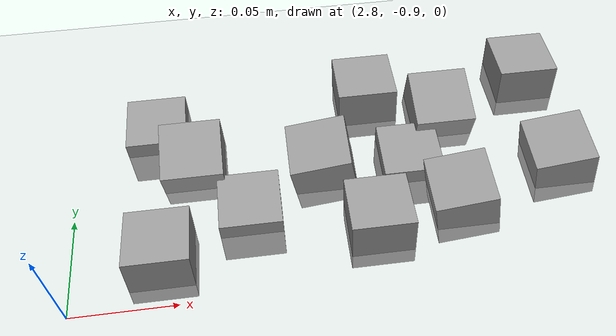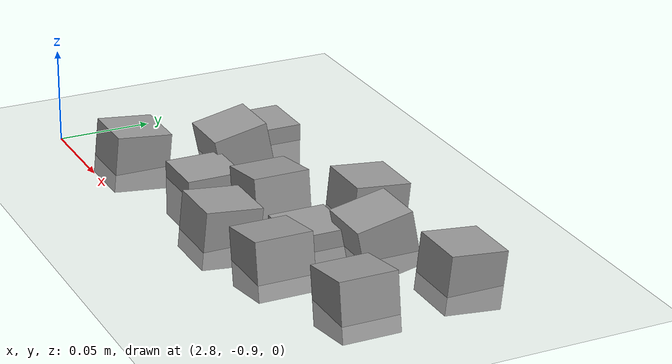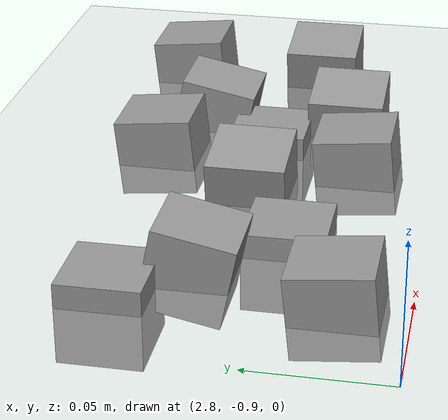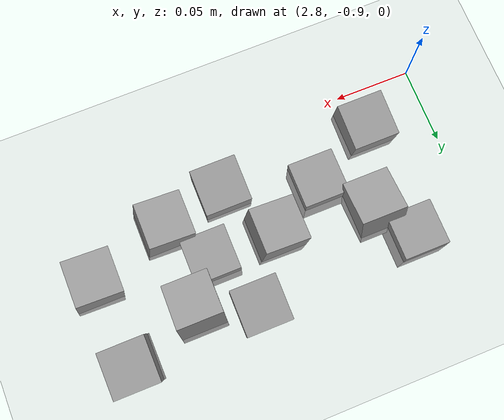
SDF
<sdf version="1.7">
 <world name="default">
  <model name="ground_plane">
   <static>1</static>
   <link name="link">
    <collision name="collision">
     <geometry><plane><normal>0 0 1</normal><size>100 100</size></plane></geometry>
     <surface><friction><ode><mu>100</mu><mu2>50</mu2></ode></friction></surface>
    </collision>
    <visual name="visual">
     <cast_shadows>0</cast_shadows>
     <geometry><plane><normal>0 0 1</normal><size>100 100</size></plane></geometry>
     <material>
      <script><uri>file://media/materials/scripts/gazebo.material</uri><name>Gazebo/Grey</name></script>
     </material>
    </visual>
   </link>
  </model>
  <model name="stone_road_12">
   <link name="link_0_clone_11">
    <inertial>
     <mass>1</mass>
     <inertia>
      <ixx>0.166667</ixx>
      <ixy>0</ixy>
      <ixz>0</ixz>
      <iyy>0.166667</iyy>
      <iyz>0</iyz>
      <izz>0.166667</izz>
     </inertia>
    </inertial>
    <pose>0.007758 0.071496 0.003778 0.2 -0 0</pose>
    <kinematic>1</kinematic>
    <visual name="visual">
     <geometry><box><size>0.03 0.03 0.03</size></box></geometry>
     <material>
      <lighting>1</lighting>
      <script><uri>file://media/materials/scripts/gazebo.material</uri><name>Gazebo/Grey</name></script>
      <shader type="pixel"><normal_map>__default__</normal_map></shader>
      <ambient>0.3 0.3 0.3 1</ambient>
      <diffuse>0.7 0.7 0.7 1</diffuse>
      <specular>0.01 0.01 0.01 1</specular>
      <emissive>0 0 0 1</emissive>
     </material>
    </visual>
    <collision name="collision">
     <geometry><box><size>0.03 0.03 0.03</size></box></geometry>
     <surface>
      <friction>
       <ode><mu>1</mu><mu2>1</mu2><fdir1>0 0 0</fdir1><slip1>0</slip1><slip2>0</slip2></ode>
       <torsional>
        <coefficient>1</coefficient>
        <patch_radius>0</patch_radius>
        <surface_radius>0</surface_radius>
        <use_patch_radius>1</use_patch_radius>
        <ode><slip>0</slip></ode>
       </torsional>
      </friction>
      <bounce><restitution_coefficient>0</restitution_coefficient><threshold>1e+06</threshold></bounce>
      <contact>
       <collide_without_contact>0</collide_without_contact>
       <collide_without_contact_bitmask>1</collide_without_contact_bitmask>
       <collide_bitmask>1</collide_bitmask>
       <ode>
        <soft_cfm>0</soft_cfm>
        <soft_erp>0.2</soft_erp>
        <kp>1e+13</kp>
        <kd>1</kd>
        <max_vel>0.01</max_vel>
        <min_depth>0</min_depth>
       </ode>
       <bullet>
        <split_impulse>1</split_impulse>
        <split_impulse_penetration_threshold>-0.01</split_impulse_penetration_threshold>
        <soft_cfm>0</soft_cfm>
        <soft_erp>0.2</soft_erp>
        <kp>1e+13</kp>
        <kd>1</kd>
       </bullet>
      </contact>
     </surface>
    </collision>
   </link>
   <link name="link_0_clone_2_clone_2_clone">
    <inertial>
     <mass>1</mass>
     <inertia>
      <ixx>0.166667</ixx>
      <ixy>0</ixy>
      <ixz>0</ixz>
      <iyy>0.166667</iyy>
      <iyz>0</iyz>
      <izz>0.166667</izz>
     </inertia>
    </inertial>
    <pose>0.189059 0.051135 0.003778 0 -0.15 0</pose>
    <kinematic>1</kinematic>
    <visual name="visual">
     <geometry><box><size>0.03 0.03 0.03</size></box></geometry>
     <material>
      <lighting>1</lighting>
      <script><uri>file://media/materials/scripts/gazebo.material</uri><name>Gazebo/Grey</name></script>
      <shader type="pixel"><normal_map>__default__</normal_map></shader>
      <ambient>0.3 0.3 0.3 1</ambient>
      <diffuse>0.7 0.7 0.7 1</diffuse>
      <specular>0.01 0.01 0.01 1</specular>
      <emissive>0 0 0 1</emissive>
     </material>
    </visual>
    <collision name="collision">
     <geometry><box><size>0.03 0.03 0.03</size></box></geometry>
     <surface>
      <friction>
       <ode><mu>1</mu><mu2>1</mu2><fdir1>0 0 0</fdir1><slip1>0</slip1><slip2>0</slip2></ode>
       <torsional>
        <coefficient>1</coefficient>
        <patch_radius>0</patch_radius>
        <surface_radius>0</surface_radius>
        <use_patch_radius>1</use_patch_radius>
        <ode><slip>0</slip></ode>
       </torsional>
      </friction>
      <bounce><restitution_coefficient>0</restitution_coefficient><threshold>1e+06</threshold></bounce>
      <contact>
       <collide_without_contact>0</collide_without_contact>
       <collide_without_contact_bitmask>1</collide_without_contact_bitmask>
       <collide_bitmask>1</collide_bitmask>
       <ode>
        <soft_cfm>0</soft_cfm>
        <soft_erp>0.2</soft_erp>
        <kp>1e+13</kp>
        <kd>1</kd>
        <max_vel>0.01</max_vel>
        <min_depth>0</min_depth>
       </ode>
       <bullet>
        <split_impulse>1</split_impulse>
        <split_impulse_penetration_threshold>-0.01</split_impulse_penetration_threshold>
        <soft_cfm>0</soft_cfm>
        <soft_erp>0.2</soft_erp>
        <kp>1e+13</kp>
        <kd>1</kd>
       </bullet>
      </contact>
     </surface>
    </collision>
   </link>
   <link name="link_0_clone_2_clone_2_clone_13_clone_clone">
    <inertial>
     <mass>1</mass>
     <inertia>
      <ixx>0.166667</ixx>
      <ixy>0</ixy>
      <ixz>0</ixz>
      <iyy>0.166667</iyy>
      <iyz>0</iyz>
      <izz>0.166667</izz>
     </inertia>
    </inertial>
    <pose>0.184456 0.108712 0.003778 -0.1 0 0</pose>
    <kinematic>1</kinematic>
    <visual name="visual">
     <geometry><box><size>0.03 0.03 0.03</size></box></geometry>
     <material>
      <lighting>1</lighting>
      <script><uri>file://media/materials/scripts/gazebo.material</uri><name>Gazebo/Grey</name></script>
      <shader type="pixel"><normal_map>__default__</normal_map></shader>
      <ambient>0.3 0.3 0.3 1</ambient>
      <diffuse>0.7 0.7 0.7 1</diffuse>
      <specular>0.01 0.01 0.01 1</specular>
      <emissive>0 0 0 1</emissive>
     </material>
    </visual>
    <collision name="collision">
     <geometry><box><size>0.03 0.03 0.03</size></box></geometry>
     <surface>
      <friction>
       <ode><mu>1</mu><mu2>1</mu2><fdir1>0 0 0</fdir1><slip1>0</slip1><slip2>0</slip2></ode>
       <torsional>
        <coefficient>1</coefficient>
        <patch_radius>0</patch_radius>
        <surface_radius>0</surface_radius>
        <use_patch_radius>1</use_patch_radius>
        <ode><slip>0</slip></ode>
       </torsional>
      </friction>
      <bounce><restitution_coefficient>0</restitution_coefficient><threshold>1e+06</threshold></bounce>
      <contact>
       <collide_without_contact>0</collide_without_contact>
       <collide_without_contact_bitmask>1</collide_without_contact_bitmask>
       <collide_bitmask>1</collide_bitmask>
       <ode>
        <soft_cfm>0</soft_cfm>
        <soft_erp>0.2</soft_erp>
        <kp>1e+13</kp>
        <kd>1</kd>
        <max_vel>0.01</max_vel>
        <min_depth>0</min_depth>
       </ode>
       <bullet>
        <split_impulse>1</split_impulse>
        <split_impulse_penetration_threshold>-0.01</split_impulse_penetration_threshold>
        <soft_cfm>0</soft_cfm>
        <soft_erp>0.2</soft_erp>
        <kp>1e+13</kp>
        <kd>1</kd>
       </bullet>
      </contact>
     </surface>
    </collision>
   </link>
   <link name="link_0_clone_2_clone_2_clone_13_clone_clone_0">
    <inertial>
     <mass>1</mass>
     <inertia>
      <ixx>0.166667</ixx>
      <ixy>0</ixy>
      <ixz>0</ixz>
      <iyy>0.166667</iyy>
      <iyz>0</iyz>
      <izz>0.166667</izz>
     </inertia>
    </inertial>
    <pose>0.094072 0.02539 0.003778 -0.1 0 0</pose>
    <kinematic>1</kinematic>
    <visual name="visual">
     <geometry><box><size>0.03 0.03 0.03</size></box></geometry>
     <material>
      <lighting>1</lighting>
      <script><uri>file://media/materials/scripts/gazebo.material</uri><name>Gazebo/Grey</name></script>
      <shader type="pixel"><normal_map>__default__</normal_map></shader>
      <ambient>0.3 0.3 0.3 1</ambient>
      <diffuse>0.7 0.7 0.7 1</diffuse>
      <specular>0.01 0.01 0.01 1</specular>
      <emissive>0 0 0 1</emissive>
     </material>
    </visual>
    <collision name="collision">
     <geometry><box><size>0.03 0.03 0.03</size></box></geometry>
     <surface>
      <friction>
       <ode><mu>1</mu><mu2>1</mu2><fdir1>0 0 0</fdir1><slip1>0</slip1><slip2>0</slip2></ode>
       <torsional>
        <coefficient>1</coefficient>
        <patch_radius>0</patch_radius>
        <surface_radius>0</surface_radius>
        <use_patch_radius>1</use_patch_radius>
        <ode><slip>0</slip></ode>
       </torsional>
      </friction>
      <bounce><restitution_coefficient>0</restitution_coefficient><threshold>1e+06</threshold></bounce>
      <contact>
       <collide_without_contact>0</collide_without_contact>
       <collide_without_contact_bitmask>1</collide_without_contact_bitmask>
       <collide_bitmask>1</collide_bitmask>
       <ode>
        <soft_cfm>0</soft_cfm>
        <soft_erp>0.2</soft_erp>
        <kp>1e+13</kp>
        <kd>1</kd>
        <max_vel>0.01</max_vel>
        <min_depth>0</min_depth>
       </ode>
       <bullet>
        <split_impulse>1</split_impulse>
        <split_impulse_penetration_threshold>-0.01</split_impulse_penetration_threshold>
        <soft_cfm>0</soft_cfm>
        <soft_erp>0.2</soft_erp>
        <kp>1e+13</kp>
        <kd>1</kd>
       </bullet>
      </contact>
     </surface>
    </collision>
   </link>
   <link name="link_0_clone_2_clone_2_clone_13_clone_clone_1">
    <inertial>
     <mass>1</mass>
     <inertia>
      <ixx>0.166667</ixx>
      <ixy>0</ixy>
      <ixz>0</ixz>
      <iyy>0.166667</iyy>
      <iyz>0</iyz>
      <izz>0.166667</izz>
     </inertia>
    </inertial>
    <pose>0.098415 0.103772 0.003778 -0.1 0 0</pose>
    <kinematic>1</kinematic>
    <visual name="visual">
     <geometry><box><size>0.03 0.03 0.03</size></box></geometry>
     <material>
      <lighting>1</lighting>
      <script><uri>file://media/materials/scripts/gazebo.material</uri><name>Gazebo/Grey</name></script>
      <shader type="pixel"><normal_map>__default__</normal_map></shader>
      <ambient>0.3 0.3 0.3 1</ambient>
      <diffuse>0.7 0.7 0.7 1</diffuse>
      <specular>0.01 0.01 0.01 1</specular>
      <emissive>0 0 0 1</emissive>
     </material>
    </visual>
    <collision name="collision">
     <geometry><box><size>0.03 0.03 0.03</size></box></geometry>
     <surface>
      <friction>
       <ode><mu>1</mu><mu2>1</mu2><fdir1>0 0 0</fdir1><slip1>0</slip1><slip2>0</slip2></ode>
       <torsional>
        <coefficient>1</coefficient>
        <patch_radius>0</patch_radius>
        <surface_radius>0</surface_radius>
        <use_patch_radius>1</use_patch_radius>
        <ode><slip>0</slip></ode>
       </torsional>
      </friction>
      <bounce><restitution_coefficient>0</restitution_coefficient><threshold>1e+06</threshold></bounce>
      <contact>
       <collide_without_contact>0</collide_without_contact>
       <collide_without_contact_bitmask>1</collide_without_contact_bitmask>
       <collide_bitmask>1</collide_bitmask>
       <ode>
        <soft_cfm>0</soft_cfm>
        <soft_erp>0.2</soft_erp>
        <kp>1e+13</kp>
        <kd>1</kd>
        <max_vel>0.01</max_vel>
        <min_depth>0</min_depth>
       </ode>
       <bullet>
        <split_impulse>1</split_impulse>
        <split_impulse_penetration_threshold>-0.01</split_impulse_penetration_threshold>
        <soft_cfm>0</soft_cfm>
        <soft_erp>0.2</soft_erp>
        <kp>1e+13</kp>
        <kd>1</kd>
       </bullet>
      </contact>
     </surface>
    </collision>
   </link>
   <link name="link_0_clone_2_clone_2_clone_13_clone_clone_16_clone_0">
    <inertial>
     <mass>1</mass>
     <inertia>
      <ixx>0.166667</ixx>
      <ixy>0</ixy>
      <ixz>0</ixz>
      <iyy>0.166667</iyy>
      <iyz>0</iyz>
      <izz>0.166667</izz>
     </inertia>
    </inertial>
    <pose>-0.010782 0.09679 -0.006222 0 -0 0</pose>
    <kinematic>1</kinematic>
    <visual name="visual">
     <geometry><box><size>0.03 0.03 0.03</size></box></geometry>
     <material>
      <lighting>1</lighting>
      <script><uri>file://media/materials/scripts/gazebo.material</uri><name>Gazebo/Grey</name></script>
      <shader type="pixel"><normal_map>__default__</normal_map></shader>
      <ambient>0.3 0.3 0.3 1</ambient>
      <diffuse>0.7 0.7 0.7 1</diffuse>
      <specular>0.01 0.01 0.01 1</specular>
      <emissive>0 0 0 1</emissive>
     </material>
    </visual>
    <collision name="collision">
     <geometry><box><size>0.03 0.03 0.03</size></box></geometry>
     <surface>
      <friction>
       <ode><mu>1</mu><mu2>1</mu2><fdir1>0 0 0</fdir1><slip1>0</slip1><slip2>0</slip2></ode>
       <torsional>
        <coefficient>1</coefficient>
        <patch_radius>0</patch_radius>
        <surface_radius>0</surface_radius>
        <use_patch_radius>1</use_patch_radius>
        <ode><slip>0</slip></ode>
       </torsional>
      </friction>
      <bounce><restitution_coefficient>0</restitution_coefficient><threshold>1e+06</threshold></bounce>
      <contact>
       <collide_without_contact>0</collide_without_contact>
       <collide_without_contact_bitmask>1</collide_without_contact_bitmask>
       <collide_bitmask>1</collide_bitmask>
       <ode>
        <soft_cfm>0</soft_cfm>
        <soft_erp>0.2</soft_erp>
        <kp>1e+13</kp>
        <kd>1</kd>
        <max_vel>0.01</max_vel>
        <min_depth>0</min_depth>
       </ode>
       <bullet>
        <split_impulse>1</split_impulse>
        <split_impulse_penetration_threshold>-0.01</split_impulse_penetration_threshold>
        <soft_cfm>0</soft_cfm>
        <soft_erp>0.2</soft_erp>
        <kp>1e+13</kp>
        <kd>1</kd>
       </bullet>
      </contact>
     </surface>
    </collision>
   </link>
   <link name="link_0_clone_2_clone_2_clone_13_clone_clone_16_clone_1">
    <inertial>
     <mass>1</mass>
     <inertia>
      <ixx>0.166667</ixx>
      <ixy>0</ixy>
      <ixz>0</ixz>
      <iyy>0.166667</iyy>
      <iyz>0</iyz>
      <izz>0.166667</izz>
     </inertia>
    </inertial>
    <pose>0.033787 0.042837 -0.006222 0 -0 0</pose>
    <kinematic>1</kinematic>
    <visual name="visual">
     <geometry><box><size>0.03 0.03 0.03</size></box></geometry>
     <material>
      <lighting>1</lighting>
      <script><uri>file://media/materials/scripts/gazebo.material</uri><name>Gazebo/Grey</name></script>
      <shader type="pixel"><normal_map>__default__</normal_map></shader>
      <ambient>0.3 0.3 0.3 1</ambient>
      <diffuse>0.7 0.7 0.7 1</diffuse>
      <specular>0.01 0.01 0.01 1</specular>
      <emissive>0 0 0 1</emissive>
     </material>
    </visual>
    <collision name="collision">
     <geometry><box><size>0.03 0.03 0.03</size></box></geometry>
     <surface>
      <friction>
       <ode><mu>1</mu><mu2>1</mu2><fdir1>0 0 0</fdir1><slip1>0</slip1><slip2>0</slip2></ode>
       <torsional>
        <coefficient>1</coefficient>
        <patch_radius>0</patch_radius>
        <surface_radius>0</surface_radius>
        <use_patch_radius>1</use_patch_radius>
        <ode><slip>0</slip></ode>
       </torsional>
      </friction>
      <bounce><restitution_coefficient>0</restitution_coefficient><threshold>1e+06</threshold></bounce>
      <contact>
       <collide_without_contact>0</collide_without_contact>
       <collide_without_contact_bitmask>1</collide_without_contact_bitmask>
       <collide_bitmask>1</collide_bitmask>
       <ode>
        <soft_cfm>0</soft_cfm>
        <soft_erp>0.2</soft_erp>
        <kp>1e+13</kp>
        <kd>1</kd>
        <max_vel>0.01</max_vel>
        <min_depth>0</min_depth>
       </ode>
       <bullet>
        <split_impulse>1</split_impulse>
        <split_impulse_penetration_threshold>-0.01</split_impulse_penetration_threshold>
        <soft_cfm>0</soft_cfm>
        <soft_erp>0.2</soft_erp>
        <kp>1e+13</kp>
        <kd>1</kd>
       </bullet>
      </contact>
     </surface>
    </collision>
   </link>
   <link name="link_0_clone_2_clone_2_clone_13_clone_clone_16_clone_20">
    <inertial>
     <mass>1</mass>
     <inertia>
      <ixx>0.166667</ixx>
      <ixy>0</ixy>
      <ixz>0</ixz>
      <iyy>0.166667</iyy>
      <iyz>0</iyz>
      <izz>0.166667</izz>
     </inertia>
    </inertial>
    <pose>0.115763 0.063063 -0.006222 0 -0 0</pose>
    <kinematic>1</kinematic>
    <visual name="visual">
     <geometry><box><size>0.03 0.03 0.03</size></box></geometry>
     <material>
      <lighting>1</lighting>
      <script><uri>file://media/materials/scripts/gazebo.material</uri><name>Gazebo/Grey</name></script>
      <shader type="pixel"><normal_map>__default__</normal_map></shader>
      <ambient>0.3 0.3 0.3 1</ambient>
      <diffuse>0.7 0.7 0.7 1</diffuse>
      <specular>0.01 0.01 0.01 1</specular>
      <emissive>0 0 0 1</emissive>
     </material>
    </visual>
    <collision name="collision">
     <geometry><box><size>0.03 0.03 0.03</size></box></geometry>
     <surface>
      <friction>
       <ode><mu>1</mu><mu2>1</mu2><fdir1>0 0 0</fdir1><slip1>0</slip1><slip2>0</slip2></ode>
       <torsional>
        <coefficient>1</coefficient>
        <patch_radius>0</patch_radius>
        <surface_radius>0</surface_radius>
        <use_patch_radius>1</use_patch_radius>
        <ode><slip>0</slip></ode>
       </torsional>
      </friction>
      <bounce><restitution_coefficient>0</restitution_coefficient><threshold>1e+06</threshold></bounce>
      <contact>
       <collide_without_contact>0</collide_without_contact>
       <collide_without_contact_bitmask>1</collide_without_contact_bitmask>
       <collide_bitmask>1</collide_bitmask>
       <ode>
        <soft_cfm>0</soft_cfm>
        <soft_erp>0.2</soft_erp>
        <kp>1e+13</kp>
        <kd>1</kd>
        <max_vel>0.01</max_vel>
        <min_depth>0</min_depth>
       </ode>
       <bullet>
        <split_impulse>1</split_impulse>
        <split_impulse_penetration_threshold>-0.01</split_impulse_penetration_threshold>
        <soft_cfm>0</soft_cfm>
        <soft_erp>0.2</soft_erp>
        <kp>1e+13</kp>
        <kd>1</kd>
       </bullet>
      </contact>
     </surface>
    </collision>
   </link>
   <link name="link_0_clone_2_clone_2_clone_13_clone_clone_3">
    <inertial>
     <mass>1</mass>
     <inertia>
      <ixx>0.166667</ixx>
      <ixy>0</ixy>
      <ixz>0</ixz>
      <iyy>0.166667</iyy>
      <iyz>0</iyz>
      <izz>0.166667</izz>
     </inertia>
    </inertial>
    <pose>-0.008408 0.020239 0.003778 -0.1 0 0</pose>
    <kinematic>1</kinematic>
    <visual name="visual">
     <geometry><box><size>0.03 0.03 0.03</size></box></geometry>
     <material>
      <lighting>1</lighting>
      <script><uri>file://media/materials/scripts/gazebo.material</uri><name>Gazebo/Grey</name></script>
      <shader type="pixel"><normal_map>__default__</normal_map></shader>
      <ambient>0.3 0.3 0.3 1</ambient>
      <diffuse>0.7 0.7 0.7 1</diffuse>
      <specular>0.01 0.01 0.01 1</specular>
      <emissive>0 0 0 1</emissive>
     </material>
    </visual>
    <collision name="collision">
     <geometry><box><size>0.03 0.03 0.03</size></box></geometry>
     <surface>
      <friction>
       <ode><mu>1</mu><mu2>1</mu2><fdir1>0 0 0</fdir1><slip1>0</slip1><slip2>0</slip2></ode>
       <torsional>
        <coefficient>1</coefficient>
        <patch_radius>0</patch_radius>
        <surface_radius>0</surface_radius>
        <use_patch_radius>1</use_patch_radius>
        <ode><slip>0</slip></ode>
       </torsional>
      </friction>
      <bounce><restitution_coefficient>0</restitution_coefficient><threshold>1e+06</threshold></bounce>
      <contact>
       <collide_without_contact>0</collide_without_contact>
       <collide_without_contact_bitmask>1</collide_without_contact_bitmask>
       <collide_bitmask>1</collide_bitmask>
       <ode>
        <soft_cfm>0</soft_cfm>
        <soft_erp>0.2</soft_erp>
        <kp>1e+13</kp>
        <kd>1</kd>
        <max_vel>0.01</max_vel>
        <min_depth>0</min_depth>
       </ode>
       <bullet>
        <split_impulse>1</split_impulse>
        <split_impulse_penetration_threshold>-0.01</split_impulse_penetration_threshold>
        <soft_cfm>0</soft_cfm>
        <soft_erp>0.2</soft_erp>
        <kp>1e+13</kp>
        <kd>1</kd>
       </bullet>
      </contact>
     </surface>
    </collision>
   </link>
   <link name="link_0_clone_2_clone_2_clone_6">
    <inertial>
     <mass>1</mass>
     <inertia>
      <ixx>0.166667</ixx>
      <ixy>0</ixy>
      <ixz>0</ixz>
      <iyy>0.166667</iyy>
      <iyz>0</iyz>
      <izz>0.166667</izz>
     </inertia>
    </inertial>
    <pose>0.136141 0.034017 0.003778 0 -0.15 0</pose>
    <kinematic>1</kinematic>
    <visual name="visual">
     <geometry><box><size>0.03 0.03 0.03</size></box></geometry>
     <material>
      <lighting>1</lighting>
      <script><uri>file://media/materials/scripts/gazebo.material</uri><name>Gazebo/Grey</name></script>
      <shader type="pixel"><normal_map>__default__</normal_map></shader>
      <ambient>0.3 0.3 0.3 1</ambient>
      <diffuse>0.7 0.7 0.7 1</diffuse>
      <specular>0.01 0.01 0.01 1</specular>
      <emissive>0 0 0 1</emissive>
     </material>
    </visual>
    <collision name="collision">
     <geometry><box><size>0.03 0.03 0.03</size></box></geometry>
     <surface>
      <friction>
       <ode><mu>1</mu><mu2>1</mu2><fdir1>0 0 0</fdir1><slip1>0</slip1><slip2>0</slip2></ode>
       <torsional>
        <coefficient>1</coefficient>
        <patch_radius>0</patch_radius>
        <surface_radius>0</surface_radius>
        <use_patch_radius>1</use_patch_radius>
        <ode><slip>0</slip></ode>
       </torsional>
      </friction>
      <bounce><restitution_coefficient>0</restitution_coefficient><threshold>1e+06</threshold></bounce>
      <contact>
       <collide_without_contact>0</collide_without_contact>
       <collide_without_contact_bitmask>1</collide_without_contact_bitmask>
       <collide_bitmask>1</collide_bitmask>
       <ode>
        <soft_cfm>0</soft_cfm>
        <soft_erp>0.2</soft_erp>
        <kp>1e+13</kp>
        <kd>1</kd>
        <max_vel>0.01</max_vel>
        <min_depth>0</min_depth>
       </ode>
       <bullet>
        <split_impulse>1</split_impulse>
        <split_impulse_penetration_threshold>-0.01</split_impulse_penetration_threshold>
        <soft_cfm>0</soft_cfm>
        <soft_erp>0.2</soft_erp>
        <kp>1e+13</kp>
        <kd>1</kd>
       </bullet>
      </contact>
     </surface>
    </collision>
   </link>
   <link name="link_0_clone_2_clone_2_clone_9">
    <inertial>
     <mass>1</mass>
     <inertia>
      <ixx>0.166667</ixx>
      <ixy>0</ixy>
      <ixz>0</ixz>
      <iyy>0.166667</iyy>
      <iyz>0</iyz>
      <izz>0.166667</izz>
     </inertia>
    </inertial>
    <pose>0.071478 0.063212 0.003778 0 -0.15 0</pose>
    <kinematic>1</kinematic>
    <visual name="visual">
     <geometry><box><size>0.03 0.03 0.03</size></box></geometry>
     <material>
      <lighting>1</lighting>
      <script><uri>file://media/materials/scripts/gazebo.material</uri><name>Gazebo/Grey</name></script>
      <shader type="pixel"><normal_map>__default__</normal_map></shader>
      <ambient>0.3 0.3 0.3 1</ambient>
      <diffuse>0.7 0.7 0.7 1</diffuse>
      <specular>0.01 0.01 0.01 1</specular>
      <emissive>0 0 0 1</emissive>
     </material>
    </visual>
    <collision name="collision">
     <geometry><box><size>0.03 0.03 0.03</size></box></geometry>
     <surface>
      <friction>
       <ode><mu>1</mu><mu2>1</mu2><fdir1>0 0 0</fdir1><slip1>0</slip1><slip2>0</slip2></ode>
       <torsional>
        <coefficient>1</coefficient>
        <patch_radius>0</patch_radius>
        <surface_radius>0</surface_radius>
        <use_patch_radius>1</use_patch_radius>
        <ode><slip>0</slip></ode>
       </torsional>
      </friction>
      <bounce><restitution_coefficient>0</restitution_coefficient><threshold>1e+06</threshold></bounce>
      <contact>
       <collide_without_contact>0</collide_without_contact>
       <collide_without_contact_bitmask>1</collide_without_contact_bitmask>
       <collide_bitmask>1</collide_bitmask>
       <ode>
        <soft_cfm>0</soft_cfm>
        <soft_erp>0.2</soft_erp>
        <kp>1e+13</kp>
        <kd>1</kd>
        <max_vel>0.01</max_vel>
        <min_depth>0</min_depth>
       </ode>
       <bullet>
        <split_impulse>1</split_impulse>
        <split_impulse_penetration_threshold>-0.01</split_impulse_penetration_threshold>
        <soft_cfm>0</soft_cfm>
        <soft_erp>0.2</soft_erp>
        <kp>1e+13</kp>
        <kd>1</kd>
       </bullet>
      </contact>
     </surface>
    </collision>
   </link>
   <link name="link_0_clone_8">
    <inertial>
     <mass>1</mass>
     <inertia>
      <ixx>0.166667</ixx>
      <ixy>0</ixy>
      <ixz>0</ixz>
      <iyy>0.166667</iyy>
      <iyz>0</iyz>
      <izz>0.166667</izz>
     </inertia>
    </inertial>
    <pose>0.135749 0.089175 0.003778 0.2 -0 0</pose>
    <kinematic>1</kinematic>
    <visual name="visual">
     <geometry><box><size>0.03 0.03 0.03</size></box></geometry>
     <material>
      <lighting>1</lighting>
      <script><uri>file://media/materials/scripts/gazebo.material</uri><name>Gazebo/Grey</name></script>
      <shader type="pixel"><normal_map>__default__</normal_map></shader>
      <ambient>0.3 0.3 0.3 1</ambient>
      <diffuse>0.7 0.7 0.7 1</diffuse>
      <specular>0.01 0.01 0.01 1</specular>
      <emissive>0 0 0 1</emissive>
     </material>
    </visual>
    <collision name="collision">
     <geometry><box><size>0.03 0.03 0.03</size></box></geometry>
     <surface>
      <friction>
       <ode><mu>1</mu><mu2>1</mu2><fdir1>0 0 0</fdir1><slip1>0</slip1><slip2>0</slip2></ode>
       <torsional>
        <coefficient>1</coefficient>
        <patch_radius>0</patch_radius>
        <surface_radius>0</surface_radius>
        <use_patch_radius>1</use_patch_radius>
        <ode><slip>0</slip></ode>
       </torsional>
      </friction>
      <bounce><restitution_coefficient>0</restitution_coefficient><threshold>1e+06</threshold></bounce>
      <contact>
       <collide_without_contact>0</collide_without_contact>
       <collide_without_contact_bitmask>1</collide_without_contact_bitmask>
       <collide_bitmask>1</collide_bitmask>
       <ode>
        <soft_cfm>0</soft_cfm>
        <soft_erp>0.2</soft_erp>
        <kp>1e+13</kp>
        <kd>1</kd>
        <max_vel>0.01</max_vel>
        <min_depth>0</min_depth>
       </ode>
       <bullet>
        <split_impulse>1</split_impulse>
        <split_impulse_penetration_threshold>-0.01</split_impulse_penetration_threshold>
        <soft_cfm>0</soft_cfm>
        <soft_erp>0.2</soft_erp>
        <kp>1e+13</kp>
        <kd>1</kd>
       </bullet>
      </contact>
     </surface>
    </collision>
   </link>
   <static>0</static>
   <pose>2.85052 -0.895534 -0 0 -0 0</pose>
  </model>
 </world>
</sdf>
